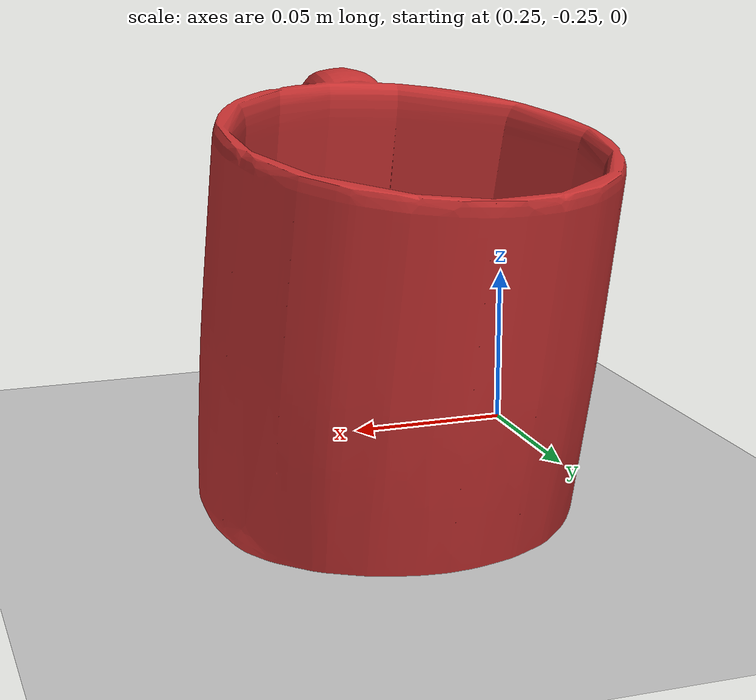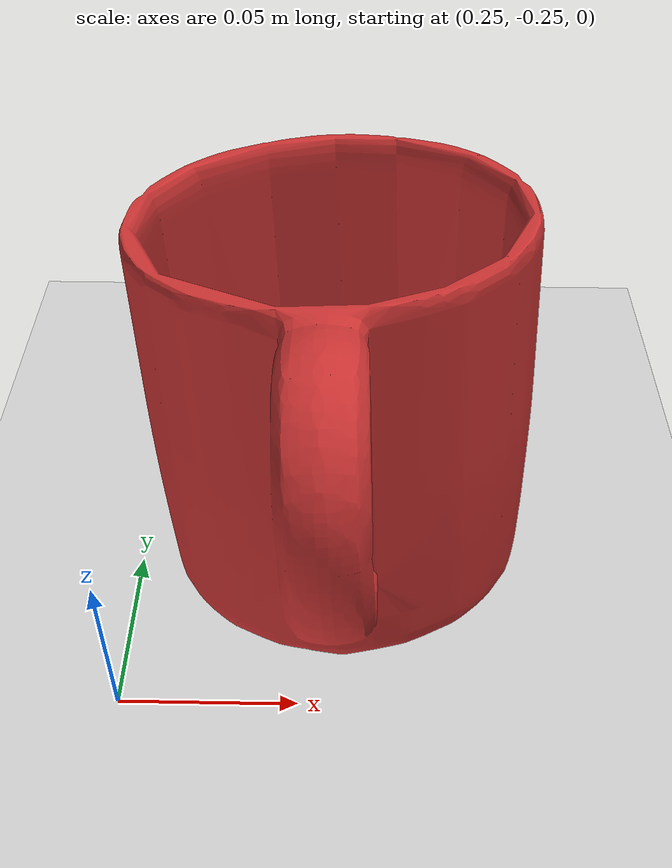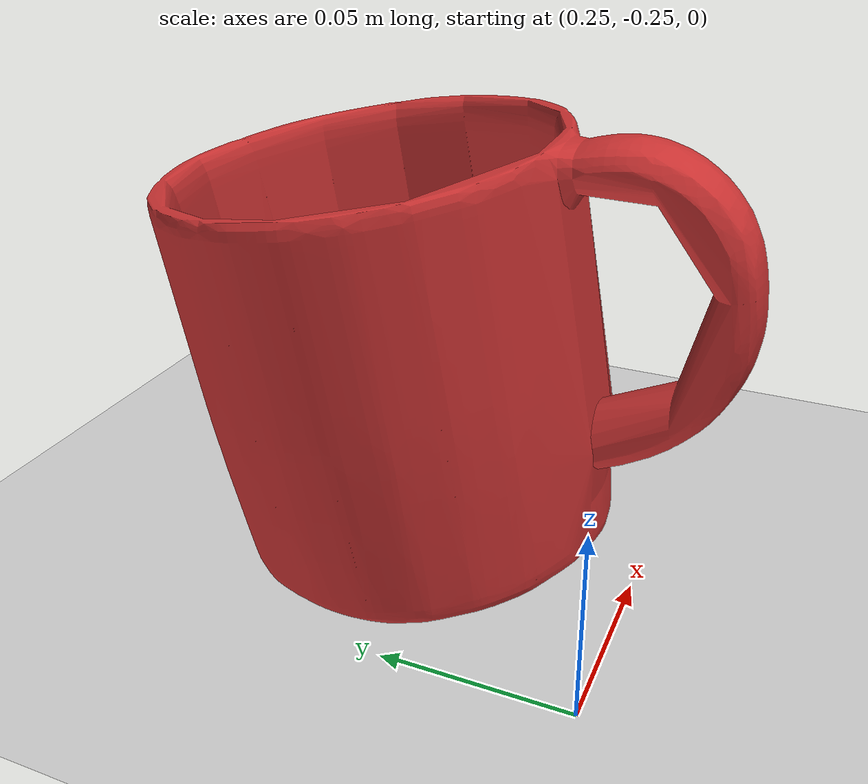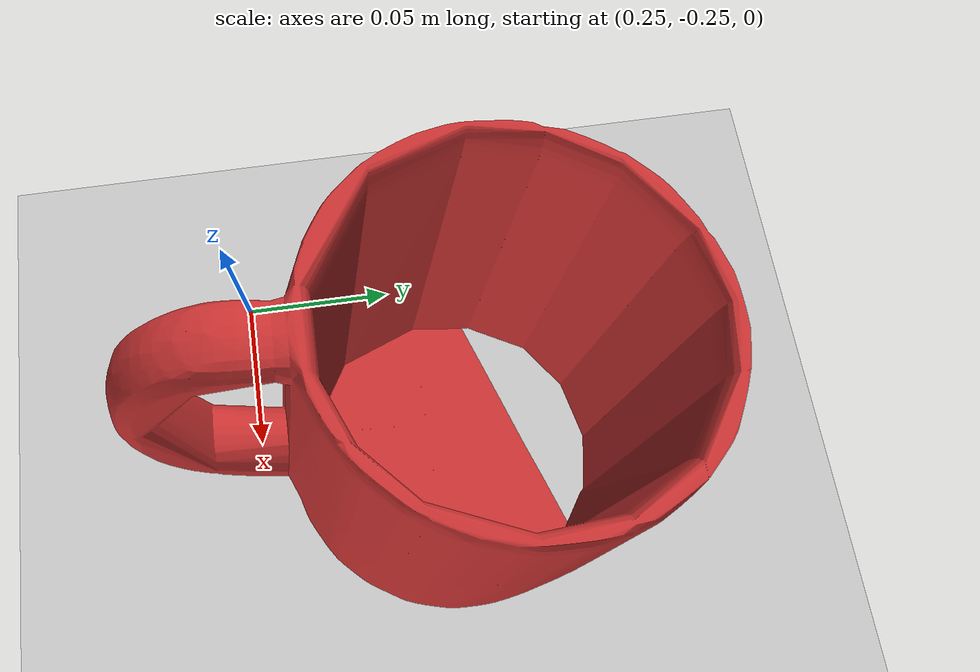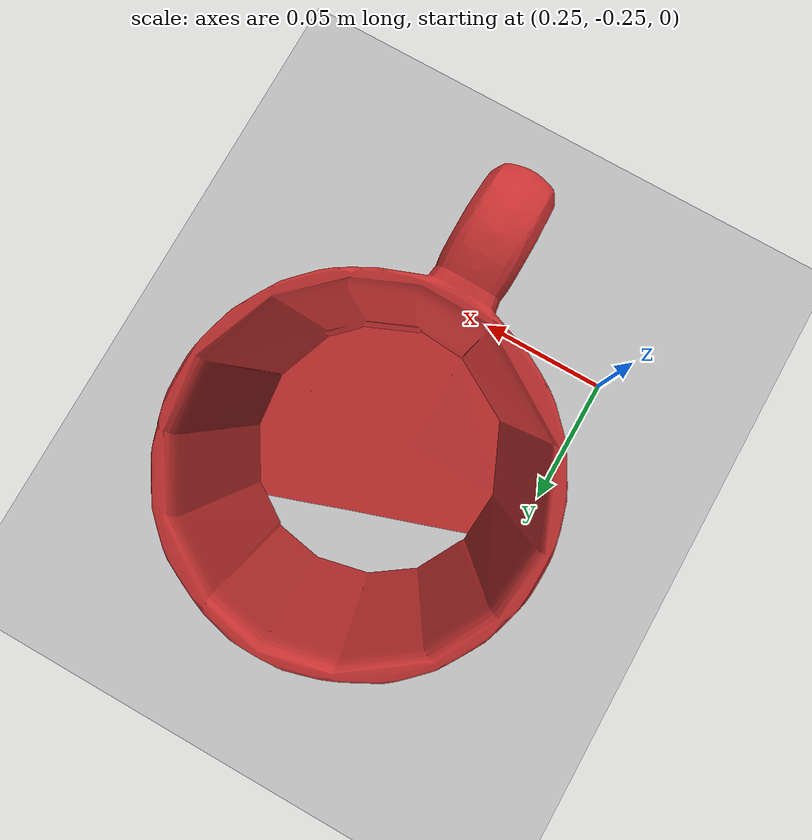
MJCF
<?xml version="1.0" ?>
<mujoco model="reconstructed_scene">
  <compiler angle="radian" meshdir="meshes"/>
  <asset>
    <mesh name="mug_mesh" file="039_mug_0.stl" scale="0.08 0.08 0.08"/>
  </asset>
  <worldbody>
    <light pos="0 0 3" dir="0 0 -1" diffuse="0.8 0.8 0.8"/>
    <geom name="floor" type="plane" size="2 2 0.1" rgba="0.8 0.8 0.8 1"/>
    <body name="mug" pos="0.3099437562835502 -0.19979555703690105 0.057057127789234385" quat="0.9968560452801367 -0.0750189772876383 -0.025301606975592684 -0.0031633399462080002">
      <geom type="mesh" mesh="mug_mesh" rgba="0.8 0.2 0.2 1"/>
      <freejoint/>
    </body>
  </worldbody>
</mujoco>
